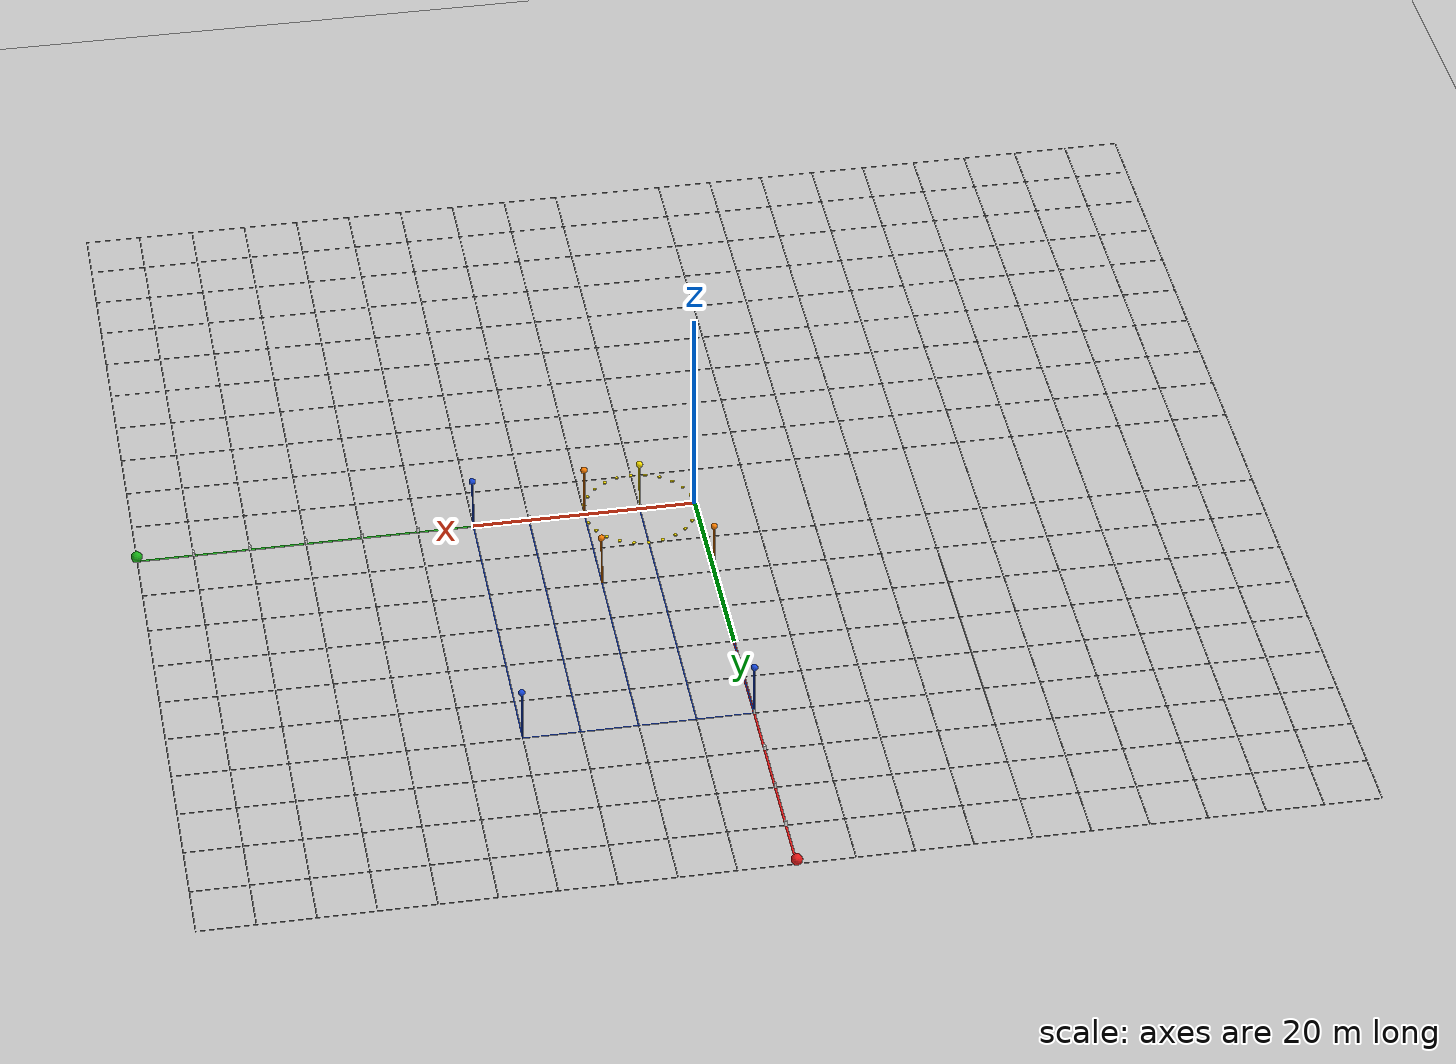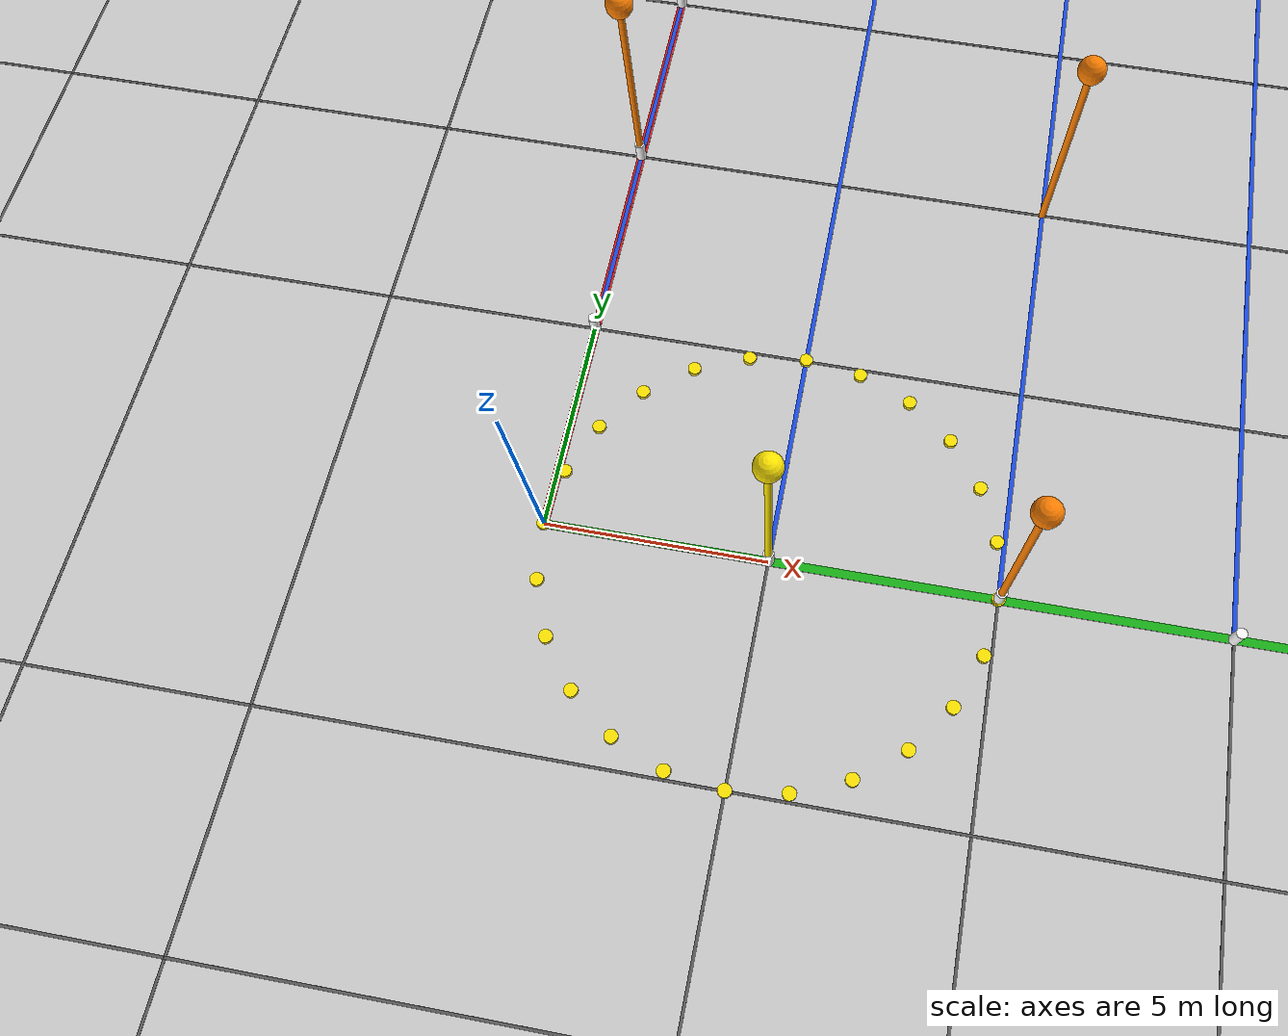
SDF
<?xml version="1.0" encoding="UTF-8"?>
<sdf version="1.9">
  <world name="trajectory_course">
    <physics type="ode">
      <max_step_size>0.004</max_step_size>
      <real_time_factor>1.0</real_time_factor>
      <real_time_update_rate>250</real_time_update_rate>
    </physics>
    <gravity>0 0 -9.8</gravity>
    <magnetic_field>6e-06 2.3e-05 -4.2e-05</magnetic_field>
    <atmosphere type="adiabatic"/>
    <scene>
      <grid>false</grid>
      <ambient>0.5 0.5 0.5 1</ambient>
      <background>0.53 0.75 0.93 1</background>
      <shadows>true</shadows>
    </scene>
    <model name="ground_plane">
      <static>true</static>
      <link name="link">
        <collision name="collision">
          <geometry><plane><normal>0 0 1</normal><size>1 1</size></plane></geometry>
        </collision>
        <visual name="visual">
          <geometry><plane><normal>0 0 1</normal><size>500 500</size></plane></geometry>
          <material>
            <ambient>0.8 0.8 0.8 1</ambient><diffuse>0.8 0.8 0.8 1</diffuse>
            <specular>0.1 0.1 0.1 1</specular>
          </material>
        </visual>
      </link>
    </model>
    <light name="sunUTC" type="directional">
      <pose>0 0 500 0 -0 0</pose>
      <cast_shadows>true</cast_shadows>
      <intensity>1</intensity>
      <direction>0.001 0.625 -0.78</direction>
      <diffuse>0.904 0.904 0.904 1</diffuse>
      <specular>0.271 0.271 0.271 1</specular>
    </light>
    <spherical_coordinates>
      <surface_model>EARTH_WGS84</surface_model>
      <world_frame_orientation>ENU</world_frame_orientation>
      <latitude_deg>47.397971057728974</latitude_deg>
      <longitude_deg>8.546163739800146</longitude_deg>
      <elevation>488</elevation>
    </spherical_coordinates>
    <model name="grid_e_1"><static>true</static><pose>-50.000 0.000 0.005 0 0 0</pose>
      <link name="l"><visual name="v"><geometry><box><size>0.06 100 0.01</size></box></geometry>
        <material><ambient>0.35 0.35 0.35 1</ambient><diffuse>0.35 0.35 0.35 1</diffuse><emissive>0.35 0.35 0.35 1</emissive></material>
      </visual></link></model>
    <model name="grid_n_2"><static>true</static><pose>0.000 -50.000 0.005 0 0 0</pose>
      <link name="l"><visual name="v"><geometry><box><size>100 0.06 0.01</size></box></geometry>
        <material><ambient>0.35 0.35 0.35 1</ambient><diffuse>0.35 0.35 0.35 1</diffuse><emissive>0.35 0.35 0.35 1</emissive></material>
      </visual></link></model>
    <model name="grid_e_3"><static>true</static><pose>-45.000 0.000 0.005 0 0 0</pose>
      <link name="l"><visual name="v"><geometry><box><size>0.06 100 0.01</size></box></geometry>
        <material><ambient>0.35 0.35 0.35 1</ambient><diffuse>0.35 0.35 0.35 1</diffuse><emissive>0.35 0.35 0.35 1</emissive></material>
      </visual></link></model>
    <model name="grid_n_4"><static>true</static><pose>0.000 -45.000 0.005 0 0 0</pose>
      <link name="l"><visual name="v"><geometry><box><size>100 0.06 0.01</size></box></geometry>
        <material><ambient>0.35 0.35 0.35 1</ambient><diffuse>0.35 0.35 0.35 1</diffuse><emissive>0.35 0.35 0.35 1</emissive></material>
      </visual></link></model>
    <model name="grid_e_5"><static>true</static><pose>-40.000 0.000 0.005 0 0 0</pose>
      <link name="l"><visual name="v"><geometry><box><size>0.06 100 0.01</size></box></geometry>
        <material><ambient>0.35 0.35 0.35 1</ambient><diffuse>0.35 0.35 0.35 1</diffuse><emissive>0.35 0.35 0.35 1</emissive></material>
      </visual></link></model>
    <model name="grid_n_6"><static>true</static><pose>0.000 -40.000 0.005 0 0 0</pose>
      <link name="l"><visual name="v"><geometry><box><size>100 0.06 0.01</size></box></geometry>
        <material><ambient>0.35 0.35 0.35 1</ambient><diffuse>0.35 0.35 0.35 1</diffuse><emissive>0.35 0.35 0.35 1</emissive></material>
      </visual></link></model>
    <model name="grid_e_7"><static>true</static><pose>-35.000 0.000 0.005 0 0 0</pose>
      <link name="l"><visual name="v"><geometry><box><size>0.06 100 0.01</size></box></geometry>
        <material><ambient>0.35 0.35 0.35 1</ambient><diffuse>0.35 0.35 0.35 1</diffuse><emissive>0.35 0.35 0.35 1</emissive></material>
      </visual></link></model>
    <model name="grid_n_8"><static>true</static><pose>0.000 -35.000 0.005 0 0 0</pose>
      <link name="l"><visual name="v"><geometry><box><size>100 0.06 0.01</size></box></geometry>
        <material><ambient>0.35 0.35 0.35 1</ambient><diffuse>0.35 0.35 0.35 1</diffuse><emissive>0.35 0.35 0.35 1</emissive></material>
      </visual></link></model>
    <model name="grid_e_9"><static>true</static><pose>-30.000 0.000 0.005 0 0 0</pose>
      <link name="l"><visual name="v"><geometry><box><size>0.06 100 0.01</size></box></geometry>
        <material><ambient>0.35 0.35 0.35 1</ambient><diffuse>0.35 0.35 0.35 1</diffuse><emissive>0.35 0.35 0.35 1</emissive></material>
      </visual></link></model>
    <model name="grid_n_10"><static>true</static><pose>0.000 -30.000 0.005 0 0 0</pose>
      <link name="l"><visual name="v"><geometry><box><size>100 0.06 0.01</size></box></geometry>
        <material><ambient>0.35 0.35 0.35 1</ambient><diffuse>0.35 0.35 0.35 1</diffuse><emissive>0.35 0.35 0.35 1</emissive></material>
      </visual></link></model>
    <model name="grid_e_11"><static>true</static><pose>-25.000 0.000 0.005 0 0 0</pose>
      <link name="l"><visual name="v"><geometry><box><size>0.06 100 0.01</size></box></geometry>
        <material><ambient>0.35 0.35 0.35 1</ambient><diffuse>0.35 0.35 0.35 1</diffuse><emissive>0.35 0.35 0.35 1</emissive></material>
      </visual></link></model>
    <model name="grid_n_12"><static>true</static><pose>0.000 -25.000 0.005 0 0 0</pose>
      <link name="l"><visual name="v"><geometry><box><size>100 0.06 0.01</size></box></geometry>
        <material><ambient>0.35 0.35 0.35 1</ambient><diffuse>0.35 0.35 0.35 1</diffuse><emissive>0.35 0.35 0.35 1</emissive></material>
      </visual></link></model>
    <model name="grid_e_13"><static>true</static><pose>-20.000 0.000 0.005 0 0 0</pose>
      <link name="l"><visual name="v"><geometry><box><size>0.06 100 0.01</size></box></geometry>
        <material><ambient>0.35 0.35 0.35 1</ambient><diffuse>0.35 0.35 0.35 1</diffuse><emissive>0.35 0.35 0.35 1</emissive></material>
      </visual></link></model>
    <model name="grid_n_14"><static>true</static><pose>0.000 -20.000 0.005 0 0 0</pose>
      <link name="l"><visual name="v"><geometry><box><size>100 0.06 0.01</size></box></geometry>
        <material><ambient>0.35 0.35 0.35 1</ambient><diffuse>0.35 0.35 0.35 1</diffuse><emissive>0.35 0.35 0.35 1</emissive></material>
      </visual></link></model>
    <model name="grid_e_15"><static>true</static><pose>-15.000 0.000 0.005 0 0 0</pose>
      <link name="l"><visual name="v"><geometry><box><size>0.06 100 0.01</size></box></geometry>
        <material><ambient>0.35 0.35 0.35 1</ambient><diffuse>0.35 0.35 0.35 1</diffuse><emissive>0.35 0.35 0.35 1</emissive></material>
      </visual></link></model>
    <model name="grid_n_16"><static>true</static><pose>0.000 -15.000 0.005 0 0 0</pose>
      <link name="l"><visual name="v"><geometry><box><size>100 0.06 0.01</size></box></geometry>
        <material><ambient>0.35 0.35 0.35 1</ambient><diffuse>0.35 0.35 0.35 1</diffuse><emissive>0.35 0.35 0.35 1</emissive></material>
      </visual></link></model>
    <model name="grid_e_17"><static>true</static><pose>-10.000 0.000 0.005 0 0 0</pose>
      <link name="l"><visual name="v"><geometry><box><size>0.06 100 0.01</size></box></geometry>
        <material><ambient>0.35 0.35 0.35 1</ambient><diffuse>0.35 0.35 0.35 1</diffuse><emissive>0.35 0.35 0.35 1</emissive></material>
      </visual></link></model>
    <model name="grid_n_18"><static>true</static><pose>0.000 -10.000 0.005 0 0 0</pose>
      <link name="l"><visual name="v"><geometry><box><size>100 0.06 0.01</size></box></geometry>
        <material><ambient>0.35 0.35 0.35 1</ambient><diffuse>0.35 0.35 0.35 1</diffuse><emissive>0.35 0.35 0.35 1</emissive></material>
      </visual></link></model>
    <model name="grid_e_19"><static>true</static><pose>-5.000 0.000 0.005 0 0 0</pose>
      <link name="l"><visual name="v"><geometry><box><size>0.06 100 0.01</size></box></geometry>
        <material><ambient>0.35 0.35 0.35 1</ambient><diffuse>0.35 0.35 0.35 1</diffuse><emissive>0.35 0.35 0.35 1</emissive></material>
      </visual></link></model>
    <model name="grid_n_20"><static>true</static><pose>0.000 -5.000 0.005 0 0 0</pose>
      <link name="l"><visual name="v"><geometry><box><size>100 0.06 0.01</size></box></geometry>
        <material><ambient>0.35 0.35 0.35 1</ambient><diffuse>0.35 0.35 0.35 1</diffuse><emissive>0.35 0.35 0.35 1</emissive></material>
      </visual></link></model>
    <model name="grid_e_21"><static>true</static><pose>5.000 0.000 0.005 0 0 0</pose>
      <link name="l"><visual name="v"><geometry><box><size>0.06 100 0.01</size></box></geometry>
        <material><ambient>0.35 0.35 0.35 1</ambient><diffuse>0.35 0.35 0.35 1</diffuse><emissive>0.35 0.35 0.35 1</emissive></material>
      </visual></link></model>
    <model name="grid_n_22"><static>true</static><pose>0.000 5.000 0.005 0 0 0</pose>
      <link name="l"><visual name="v"><geometry><box><size>100 0.06 0.01</size></box></geometry>
        <material><ambient>0.35 0.35 0.35 1</ambient><diffuse>0.35 0.35 0.35 1</diffuse><emissive>0.35 0.35 0.35 1</emissive></material>
      </visual></link></model>
    <model name="grid_e_23"><static>true</static><pose>10.000 0.000 0.005 0 0 0</pose>
      <link name="l"><visual name="v"><geometry><box><size>0.06 100 0.01</size></box></geometry>
        <material><ambient>0.35 0.35 0.35 1</ambient><diffuse>0.35 0.35 0.35 1</diffuse><emissive>0.35 0.35 0.35 1</emissive></material>
      </visual></link></model>
    <model name="grid_n_24"><static>true</static><pose>0.000 10.000 0.005 0 0 0</pose>
      <link name="l"><visual name="v"><geometry><box><size>100 0.06 0.01</size></box></geometry>
        <material><ambient>0.35 0.35 0.35 1</ambient><diffuse>0.35 0.35 0.35 1</diffuse><emissive>0.35 0.35 0.35 1</emissive></material>
      </visual></link></model>
    <model name="grid_e_25"><static>true</static><pose>15.000 0.000 0.005 0 0 0</pose>
      <link name="l"><visual name="v"><geometry><box><size>0.06 100 0.01</size></box></geometry>
        <material><ambient>0.35 0.35 0.35 1</ambient><diffuse>0.35 0.35 0.35 1</diffuse><emissive>0.35 0.35 0.35 1</emissive></material>
      </visual></link></model>
    <model name="grid_n_26"><static>true</static><pose>0.000 15.000 0.005 0 0 0</pose>
      <link name="l"><visual name="v"><geometry><box><size>100 0.06 0.01</size></box></geometry>
        <material><ambient>0.35 0.35 0.35 1</ambient><diffuse>0.35 0.35 0.35 1</diffuse><emissive>0.35 0.35 0.35 1</emissive></material>
      </visual></link></model>
    <model name="grid_e_27"><static>true</static><pose>20.000 0.000 0.005 0 0 0</pose>
      <link name="l"><visual name="v"><geometry><box><size>0.06 100 0.01</size></box></geometry>
        <material><ambient>0.35 0.35 0.35 1</ambient><diffuse>0.35 0.35 0.35 1</diffuse><emissive>0.35 0.35 0.35 1</emissive></material>
      </visual></link></model>
    <model name="grid_n_28"><static>true</static><pose>0.000 20.000 0.005 0 0 0</pose>
      <link name="l"><visual name="v"><geometry><box><size>100 0.06 0.01</size></box></geometry>
        <material><ambient>0.35 0.35 0.35 1</ambient><diffuse>0.35 0.35 0.35 1</diffuse><emissive>0.35 0.35 0.35 1</emissive></material>
      </visual></link></model>
    <model name="grid_e_29"><static>true</static><pose>25.000 0.000 0.005 0 0 0</pose>
      <link name="l"><visual name="v"><geometry><box><size>0.06 100 0.01</size></box></geometry>
        <material><ambient>0.35 0.35 0.35 1</ambient><diffuse>0.35 0.35 0.35 1</diffuse><emissive>0.35 0.35 0.35 1</emissive></material>
      </visual></link></model>
    <model name="grid_n_30"><static>true</static><pose>0.000 25.000 0.005 0 0 0</pose>
      <link name="l"><visual name="v"><geometry><box><size>100 0.06 0.01</size></box></geometry>
        <material><ambient>0.35 0.35 0.35 1</ambient><diffuse>0.35 0.35 0.35 1</diffuse><emissive>0.35 0.35 0.35 1</emissive></material>
      </visual></link></model>
    <model name="grid_e_31"><static>true</static><pose>30.000 0.000 0.005 0 0 0</pose>
      <link name="l"><visual name="v"><geometry><box><size>0.06 100 0.01</size></box></geometry>
        <material><ambient>0.35 0.35 0.35 1</ambient><diffuse>0.35 0.35 0.35 1</diffuse><emissive>0.35 0.35 0.35 1</emissive></material>
      </visual></link></model>
    <model name="grid_n_32"><static>true</static><pose>0.000 30.000 0.005 0 0 0</pose>
      <link name="l"><visual name="v"><geometry><box><size>100 0.06 0.01</size></box></geometry>
        <material><ambient>0.35 0.35 0.35 1</ambient><diffuse>0.35 0.35 0.35 1</diffuse><emissive>0.35 0.35 0.35 1</emissive></material>
      </visual></link></model>
    <model name="grid_e_33"><static>true</static><pose>35.000 0.000 0.005 0 0 0</pose>
      <link name="l"><visual name="v"><geometry><box><size>0.06 100 0.01</size></box></geometry>
        <material><ambient>0.35 0.35 0.35 1</ambient><diffuse>0.35 0.35 0.35 1</diffuse><emissive>0.35 0.35 0.35 1</emissive></material>
      </visual></link></model>
    <model name="grid_n_34"><static>true</static><pose>0.000 35.000 0.005 0 0 0</pose>
      <link name="l"><visual name="v"><geometry><box><size>100 0.06 0.01</size></box></geometry>
        <material><ambient>0.35 0.35 0.35 1</ambient><diffuse>0.35 0.35 0.35 1</diffuse><emissive>0.35 0.35 0.35 1</emissive></material>
      </visual></link></model>
    <model name="grid_e_35"><static>true</static><pose>40.000 0.000 0.005 0 0 0</pose>
      <link name="l"><visual name="v"><geometry><box><size>0.06 100 0.01</size></box></geometry>
        <material><ambient>0.35 0.35 0.35 1</ambient><diffuse>0.35 0.35 0.35 1</diffuse><emissive>0.35 0.35 0.35 1</emissive></material>
      </visual></link></model>
    <model name="grid_n_36"><static>true</static><pose>0.000 40.000 0.005 0 0 0</pose>
      <link name="l"><visual name="v"><geometry><box><size>100 0.06 0.01</size></box></geometry>
        <material><ambient>0.35 0.35 0.35 1</ambient><diffuse>0.35 0.35 0.35 1</diffuse><emissive>0.35 0.35 0.35 1</emissive></material>
      </visual></link></model>
    <model name="grid_e_37"><static>true</static><pose>45.000 0.000 0.005 0 0 0</pose>
      <link name="l"><visual name="v"><geometry><box><size>0.06 100 0.01</size></box></geometry>
        <material><ambient>0.35 0.35 0.35 1</ambient><diffuse>0.35 0.35 0.35 1</diffuse><emissive>0.35 0.35 0.35 1</emissive></material>
      </visual></link></model>
    <model name="grid_n_38"><static>true</static><pose>0.000 45.000 0.005 0 0 0</pose>
      <link name="l"><visual name="v"><geometry><box><size>100 0.06 0.01</size></box></geometry>
        <material><ambient>0.35 0.35 0.35 1</ambient><diffuse>0.35 0.35 0.35 1</diffuse><emissive>0.35 0.35 0.35 1</emissive></material>
      </visual></link></model>
    <model name="grid_e_39"><static>true</static><pose>50.000 0.000 0.005 0 0 0</pose>
      <link name="l"><visual name="v"><geometry><box><size>0.06 100 0.01</size></box></geometry>
        <material><ambient>0.35 0.35 0.35 1</ambient><diffuse>0.35 0.35 0.35 1</diffuse><emissive>0.35 0.35 0.35 1</emissive></material>
      </visual></link></model>
    <model name="grid_n_40"><static>true</static><pose>0.000 50.000 0.005 0 0 0</pose>
      <link name="l"><visual name="v"><geometry><box><size>100 0.06 0.01</size></box></geometry>
        <material><ambient>0.35 0.35 0.35 1</ambient><diffuse>0.35 0.35 0.35 1</diffuse><emissive>0.35 0.35 0.35 1</emissive></material>
      </visual></link></model>
    <model name="axis_north_41"><static>true</static><pose>0.000 25.000 0.010 0 0 0</pose>
      <link name="l"><visual name="v"><geometry><box><size>0.2 50 0.01</size></box></geometry>
        <material><ambient>0.9 0.1 0.1 1</ambient><diffuse>0.9 0.1 0.1 1</diffuse><emissive>0.9 0.1 0.1 1</emissive></material>
      </visual></link></model>
    <model name="axis_east_42"><static>true</static><pose>25.000 0.000 0.010 0 0 0</pose>
      <link name="l"><visual name="v"><geometry><box><size>50 0.2 0.01</size></box></geometry>
        <material><ambient>0.1 0.7 0.1 1</ambient><diffuse>0.1 0.7 0.1 1</diffuse><emissive>0.1 0.7 0.1 1</emissive></material>
      </visual></link></model>
    <model name="north_tip_43"><static>true</static><pose>0.000 50.000 0.500 0 0 0</pose>
      <link name="l"><visual name="v"><geometry><sphere><radius>0.5</radius></sphere></geometry>
        <material><ambient>0.9 0.1 0.1 1</ambient><diffuse>0.9 0.1 0.1 1</diffuse><emissive>0.9 0.1 0.1 1</emissive></material>
      </visual></link></model>
    <model name="east_tip_44"><static>true</static><pose>50.000 0.000 0.500 0 0 0</pose>
      <link name="l"><visual name="v"><geometry><sphere><radius>0.5</radius></sphere></geometry>
        <material><ambient>0.1 0.7 0.1 1</ambient><diffuse>0.1 0.7 0.1 1</diffuse><emissive>0.1 0.7 0.1 1</emissive></material>
      </visual></link></model>
    <model name="tick_n_45"><static>true</static><pose>0.000 5.000 0.250 0 0 0</pose>
      <link name="l"><visual name="v"><geometry><cylinder><radius>0.12</radius><length>0.5</length></cylinder></geometry>
        <material><ambient>1 1 1 1</ambient><diffuse>1 1 1 1</diffuse><emissive>1 1 1 1</emissive></material>
      </visual></link></model>
    <model name="tick_e_46"><static>true</static><pose>5.000 0.000 0.250 0 0 0</pose>
      <link name="l"><visual name="v"><geometry><cylinder><radius>0.12</radius><length>0.5</length></cylinder></geometry>
        <material><ambient>1 1 1 1</ambient><diffuse>1 1 1 1</diffuse><emissive>1 1 1 1</emissive></material>
      </visual></link></model>
    <model name="tick_n_47"><static>true</static><pose>0.000 10.000 0.250 0 0 0</pose>
      <link name="l"><visual name="v"><geometry><cylinder><radius>0.12</radius><length>0.5</length></cylinder></geometry>
        <material><ambient>1 1 1 1</ambient><diffuse>1 1 1 1</diffuse><emissive>1 1 1 1</emissive></material>
      </visual></link></model>
    <model name="tick_e_48"><static>true</static><pose>10.000 0.000 0.250 0 0 0</pose>
      <link name="l"><visual name="v"><geometry><cylinder><radius>0.12</radius><length>0.5</length></cylinder></geometry>
        <material><ambient>1 1 1 1</ambient><diffuse>1 1 1 1</diffuse><emissive>1 1 1 1</emissive></material>
      </visual></link></model>
    <model name="tick_n_49"><static>true</static><pose>0.000 15.000 0.250 0 0 0</pose>
      <link name="l"><visual name="v"><geometry><cylinder><radius>0.12</radius><length>0.5</length></cylinder></geometry>
        <material><ambient>1 1 1 1</ambient><diffuse>1 1 1 1</diffuse><emissive>1 1 1 1</emissive></material>
      </visual></link></model>
    <model name="tick_e_50"><static>true</static><pose>15.000 0.000 0.250 0 0 0</pose>
      <link name="l"><visual name="v"><geometry><cylinder><radius>0.12</radius><length>0.5</length></cylinder></geometry>
        <material><ambient>1 1 1 1</ambient><diffuse>1 1 1 1</diffuse><emissive>1 1 1 1</emissive></material>
      </visual></link></model>
    <model name="tick_n_51"><static>true</static><pose>0.000 20.000 0.250 0 0 0</pose>
      <link name="l"><visual name="v"><geometry><cylinder><radius>0.12</radius><length>0.5</length></cylinder></geometry>
        <material><ambient>1 1 1 1</ambient><diffuse>1 1 1 1</diffuse><emissive>1 1 1 1</emissive></material>
      </visual></link></model>
    <model name="tick_e_52"><static>true</static><pose>20.000 0.000 0.250 0 0 0</pose>
      <link name="l"><visual name="v"><geometry><cylinder><radius>0.12</radius><length>0.5</length></cylinder></geometry>
        <material><ambient>1 1 1 1</ambient><diffuse>1 1 1 1</diffuse><emissive>1 1 1 1</emissive></material>
      </visual></link></model>
    <model name="tick_n_53"><static>true</static><pose>0.000 25.000 0.250 0 0 0</pose>
      <link name="l"><visual name="v"><geometry><cylinder><radius>0.12</radius><length>0.5</length></cylinder></geometry>
        <material><ambient>1 1 1 1</ambient><diffuse>1 1 1 1</diffuse><emissive>1 1 1 1</emissive></material>
      </visual></link></model>
    <model name="tick_e_54"><static>true</static><pose>25.000 0.000 0.250 0 0 0</pose>
      <link name="l"><visual name="v"><geometry><cylinder><radius>0.12</radius><length>0.5</length></cylinder></geometry>
        <material><ambient>1 1 1 1</ambient><diffuse>1 1 1 1</diffuse><emissive>1 1 1 1</emissive></material>
      </visual></link></model>
    <model name="tick_n_55"><static>true</static><pose>0.000 30.000 0.250 0 0 0</pose>
      <link name="l"><visual name="v"><geometry><cylinder><radius>0.12</radius><length>0.5</length></cylinder></geometry>
        <material><ambient>1 1 1 1</ambient><diffuse>1 1 1 1</diffuse><emissive>1 1 1 1</emissive></material>
      </visual></link></model>
    <model name="tick_e_56"><static>true</static><pose>30.000 0.000 0.250 0 0 0</pose>
      <link name="l"><visual name="v"><geometry><cylinder><radius>0.12</radius><length>0.5</length></cylinder></geometry>
        <material><ambient>1 1 1 1</ambient><diffuse>1 1 1 1</diffuse><emissive>1 1 1 1</emissive></material>
      </visual></link></model>
    <model name="tick_n_57"><static>true</static><pose>0.000 35.000 0.250 0 0 0</pose>
      <link name="l"><visual name="v"><geometry><cylinder><radius>0.12</radius><length>0.5</length></cylinder></geometry>
        <material><ambient>1 1 1 1</ambient><diffuse>1 1 1 1</diffuse><emissive>1 1 1 1</emissive></material>
      </visual></link></model>
    <model name="tick_e_58"><static>true</static><pose>35.000 0.000 0.250 0 0 0</pose>
      <link name="l"><visual name="v"><geometry><cylinder><radius>0.12</radius><length>0.5</length></cylinder></geometry>
        <material><ambient>1 1 1 1</ambient><diffuse>1 1 1 1</diffuse><emissive>1 1 1 1</emissive></material>
      </visual></link></model>
    <model name="tick_n_59"><static>true</static><pose>0.000 40.000 0.250 0 0 0</pose>
      <link name="l"><visual name="v"><geometry><cylinder><radius>0.12</radius><length>0.5</length></cylinder></geometry>
        <material><ambient>1 1 1 1</ambient><diffuse>1 1 1 1</diffuse><emissive>1 1 1 1</emissive></material>
      </visual></link></model>
    <model name="tick_e_60"><static>true</static><pose>40.000 0.000 0.250 0 0 0</pose>
      <link name="l"><visual name="v"><geometry><cylinder><radius>0.12</radius><length>0.5</length></cylinder></geometry>
        <material><ambient>1 1 1 1</ambient><diffuse>1 1 1 1</diffuse><emissive>1 1 1 1</emissive></material>
      </visual></link></model>
    <model name="tick_n_61"><static>true</static><pose>0.000 45.000 0.250 0 0 0</pose>
      <link name="l"><visual name="v"><geometry><cylinder><radius>0.12</radius><length>0.5</length></cylinder></geometry>
        <material><ambient>1 1 1 1</ambient><diffuse>1 1 1 1</diffuse><emissive>1 1 1 1</emissive></material>
      </visual></link></model>
    <model name="tick_e_62"><static>true</static><pose>45.000 0.000 0.250 0 0 0</pose>
      <link name="l"><visual name="v"><geometry><cylinder><radius>0.12</radius><length>0.5</length></cylinder></geometry>
        <material><ambient>1 1 1 1</ambient><diffuse>1 1 1 1</diffuse><emissive>1 1 1 1</emissive></material>
      </visual></link></model>
    <model name="tick_n_63"><static>true</static><pose>0.000 50.000 0.250 0 0 0</pose>
      <link name="l"><visual name="v"><geometry><cylinder><radius>0.12</radius><length>0.5</length></cylinder></geometry>
        <material><ambient>1 1 1 1</ambient><diffuse>1 1 1 1</diffuse><emissive>1 1 1 1</emissive></material>
      </visual></link></model>
    <model name="tick_e_64"><static>true</static><pose>50.000 0.000 0.250 0 0 0</pose>
      <link name="l"><visual name="v"><geometry><cylinder><radius>0.12</radius><length>0.5</length></cylinder></geometry>
        <material><ambient>1 1 1 1</ambient><diffuse>1 1 1 1</diffuse><emissive>1 1 1 1</emissive></material>
      </visual></link></model>
    <model name="pole_65"><static>true</static><pose>0.000 10.000 2.500 0 0 0</pose>
      <link name="l"><visual name="v"><geometry><cylinder><radius>0.08</radius><length>5.0</length></cylinder></geometry>
        <material><ambient>1 0.5 0 1</ambient><diffuse>1 0.5 0 1</diffuse><emissive>1 0.5 0 1</emissive></material>
      </visual></link></model>
    <model name="pole_top_66"><static>true</static><pose>0.000 10.000 5.000 0 0 0</pose>
      <link name="l"><visual name="v"><geometry><sphere><radius>0.3</radius></sphere></geometry>
        <material><ambient>1 0.5 0 1</ambient><diffuse>1 0.5 0 1</diffuse><emissive>1 0.5 0 1</emissive></material>
      </visual></link></model>
    <model name="pole_67"><static>true</static><pose>10.000 10.000 2.500 0 0 0</pose>
      <link name="l"><visual name="v"><geometry><cylinder><radius>0.08</radius><length>5.0</length></cylinder></geometry>
        <material><ambient>1 0.5 0 1</ambient><diffuse>1 0.5 0 1</diffuse><emissive>1 0.5 0 1</emissive></material>
      </visual></link></model>
    <model name="pole_top_68"><static>true</static><pose>10.000 10.000 5.000 0 0 0</pose>
      <link name="l"><visual name="v"><geometry><sphere><radius>0.3</radius></sphere></geometry>
        <material><ambient>1 0.5 0 1</ambient><diffuse>1 0.5 0 1</diffuse><emissive>1 0.5 0 1</emissive></material>
      </visual></link></model>
    <model name="pole_69"><static>true</static><pose>10.000 0.000 2.500 0 0 0</pose>
      <link name="l"><visual name="v"><geometry><cylinder><radius>0.08</radius><length>5.0</length></cylinder></geometry>
        <material><ambient>1 0.5 0 1</ambient><diffuse>1 0.5 0 1</diffuse><emissive>1 0.5 0 1</emissive></material>
      </visual></link></model>
    <model name="pole_top_70"><static>true</static><pose>10.000 0.000 5.000 0 0 0</pose>
      <link name="l"><visual name="v"><geometry><sphere><radius>0.3</radius></sphere></geometry>
        <material><ambient>1 0.5 0 1</ambient><diffuse>1 0.5 0 1</diffuse><emissive>1 0.5 0 1</emissive></material>
      </visual></link></model>
    <model name="circle_71"><static>true</static><pose>10.000 0.000 0.050 0 0 0</pose>
      <link name="l"><visual name="v"><geometry><cylinder><radius>0.15</radius><length>0.1</length></cylinder></geometry>
        <material><ambient>1 0.9 0 1</ambient><diffuse>1 0.9 0 1</diffuse><emissive>1 0.9 0 1</emissive></material>
      </visual></link></model>
    <model name="circle_72"><static>true</static><pose>9.830 1.294 0.050 0 0 0</pose>
      <link name="l"><visual name="v"><geometry><cylinder><radius>0.15</radius><length>0.1</length></cylinder></geometry>
        <material><ambient>1 0.9 0 1</ambient><diffuse>1 0.9 0 1</diffuse><emissive>1 0.9 0 1</emissive></material>
      </visual></link></model>
    <model name="circle_73"><static>true</static><pose>9.330 2.500 0.050 0 0 0</pose>
      <link name="l"><visual name="v"><geometry><cylinder><radius>0.15</radius><length>0.1</length></cylinder></geometry>
        <material><ambient>1 0.9 0 1</ambient><diffuse>1 0.9 0 1</diffuse><emissive>1 0.9 0 1</emissive></material>
      </visual></link></model>
    <model name="circle_74"><static>true</static><pose>8.536 3.536 0.050 0 0 0</pose>
      <link name="l"><visual name="v"><geometry><cylinder><radius>0.15</radius><length>0.1</length></cylinder></geometry>
        <material><ambient>1 0.9 0 1</ambient><diffuse>1 0.9 0 1</diffuse><emissive>1 0.9 0 1</emissive></material>
      </visual></link></model>
    <model name="circle_75"><static>true</static><pose>7.500 4.330 0.050 0 0 0</pose>
      <link name="l"><visual name="v"><geometry><cylinder><radius>0.15</radius><length>0.1</length></cylinder></geometry>
        <material><ambient>1 0.9 0 1</ambient><diffuse>1 0.9 0 1</diffuse><emissive>1 0.9 0 1</emissive></material>
      </visual></link></model>
    <model name="circle_76"><static>true</static><pose>6.294 4.830 0.050 0 0 0</pose>
      <link name="l"><visual name="v"><geometry><cylinder><radius>0.15</radius><length>0.1</length></cylinder></geometry>
        <material><ambient>1 0.9 0 1</ambient><diffuse>1 0.9 0 1</diffuse><emissive>1 0.9 0 1</emissive></material>
      </visual></link></model>
    <model name="circle_77"><static>true</static><pose>5.000 5.000 0.050 0 0 0</pose>
      <link name="l"><visual name="v"><geometry><cylinder><radius>0.15</radius><length>0.1</length></cylinder></geometry>
        <material><ambient>1 0.9 0 1</ambient><diffuse>1 0.9 0 1</diffuse><emissive>1 0.9 0 1</emissive></material>
      </visual></link></model>
    <model name="circle_78"><static>true</static><pose>3.706 4.830 0.050 0 0 0</pose>
      <link name="l"><visual name="v"><geometry><cylinder><radius>0.15</radius><length>0.1</length></cylinder></geometry>
        <material><ambient>1 0.9 0 1</ambient><diffuse>1 0.9 0 1</diffuse><emissive>1 0.9 0 1</emissive></material>
      </visual></link></model>
    <model name="circle_79"><static>true</static><pose>2.500 4.330 0.050 0 0 0</pose>
      <link name="l"><visual name="v"><geometry><cylinder><radius>0.15</radius><length>0.1</length></cylinder></geometry>
        <material><ambient>1 0.9 0 1</ambient><diffuse>1 0.9 0 1</diffuse><emissive>1 0.9 0 1</emissive></material>
      </visual></link></model>
    <model name="circle_80"><static>true</static><pose>1.464 3.536 0.050 0 0 0</pose>
      <link name="l"><visual name="v"><geometry><cylinder><radius>0.15</radius><length>0.1</length></cylinder></geometry>
        <material><ambient>1 0.9 0 1</ambient><diffuse>1 0.9 0 1</diffuse><emissive>1 0.9 0 1</emissive></material>
      </visual></link></model>
    <model name="circle_81"><static>true</static><pose>0.670 2.500 0.050 0 0 0</pose>
      <link name="l"><visual name="v"><geometry><cylinder><radius>0.15</radius><length>0.1</length></cylinder></geometry>
        <material><ambient>1 0.9 0 1</ambient><diffuse>1 0.9 0 1</diffuse><emissive>1 0.9 0 1</emissive></material>
      </visual></link></model>
    <model name="circle_82"><static>true</static><pose>0.170 1.294 0.050 0 0 0</pose>
      <link name="l"><visual name="v"><geometry><cylinder><radius>0.15</radius><length>0.1</length></cylinder></geometry>
        <material><ambient>1 0.9 0 1</ambient><diffuse>1 0.9 0 1</diffuse><emissive>1 0.9 0 1</emissive></material>
      </visual></link></model>
    <model name="circle_83"><static>true</static><pose>0.000 0.000 0.050 0 0 0</pose>
      <link name="l"><visual name="v"><geometry><cylinder><radius>0.15</radius><length>0.1</length></cylinder></geometry>
        <material><ambient>1 0.9 0 1</ambient><diffuse>1 0.9 0 1</diffuse><emissive>1 0.9 0 1</emissive></material>
      </visual></link></model>
    <model name="circle_84"><static>true</static><pose>0.170 -1.294 0.050 0 0 0</pose>
      <link name="l"><visual name="v"><geometry><cylinder><radius>0.15</radius><length>0.1</length></cylinder></geometry>
        <material><ambient>1 0.9 0 1</ambient><diffuse>1 0.9 0 1</diffuse><emissive>1 0.9 0 1</emissive></material>
      </visual></link></model>
    <model name="circle_85"><static>true</static><pose>0.670 -2.500 0.050 0 0 0</pose>
      <link name="l"><visual name="v"><geometry><cylinder><radius>0.15</radius><length>0.1</length></cylinder></geometry>
        <material><ambient>1 0.9 0 1</ambient><diffuse>1 0.9 0 1</diffuse><emissive>1 0.9 0 1</emissive></material>
      </visual></link></model>
    <model name="circle_86"><static>true</static><pose>1.464 -3.536 0.050 0 0 0</pose>
      <link name="l"><visual name="v"><geometry><cylinder><radius>0.15</radius><length>0.1</length></cylinder></geometry>
        <material><ambient>1 0.9 0 1</ambient><diffuse>1 0.9 0 1</diffuse><emissive>1 0.9 0 1</emissive></material>
      </visual></link></model>
    <model name="circle_87"><static>true</static><pose>2.500 -4.330 0.050 0 0 0</pose>
      <link name="l"><visual name="v"><geometry><cylinder><radius>0.15</radius><length>0.1</length></cylinder></geometry>
        <material><ambient>1 0.9 0 1</ambient><diffuse>1 0.9 0 1</diffuse><emissive>1 0.9 0 1</emissive></material>
      </visual></link></model>
    <model name="circle_88"><static>true</static><pose>3.706 -4.830 0.050 0 0 0</pose>
      <link name="l"><visual name="v"><geometry><cylinder><radius>0.15</radius><length>0.1</length></cylinder></geometry>
        <material><ambient>1 0.9 0 1</ambient><diffuse>1 0.9 0 1</diffuse><emissive>1 0.9 0 1</emissive></material>
      </visual></link></model>
    <model name="circle_89"><static>true</static><pose>5.000 -5.000 0.050 0 0 0</pose>
      <link name="l"><visual name="v"><geometry><cylinder><radius>0.15</radius><length>0.1</length></cylinder></geometry>
        <material><ambient>1 0.9 0 1</ambient><diffuse>1 0.9 0 1</diffuse><emissive>1 0.9 0 1</emissive></material>
      </visual></link></model>
    <model name="circle_90"><static>true</static><pose>6.294 -4.830 0.050 0 0 0</pose>
      <link name="l"><visual name="v"><geometry><cylinder><radius>0.15</radius><length>0.1</length></cylinder></geometry>
        <material><ambient>1 0.9 0 1</ambient><diffuse>1 0.9 0 1</diffuse><emissive>1 0.9 0 1</emissive></material>
      </visual></link></model>
    <model name="circle_91"><static>true</static><pose>7.500 -4.330 0.050 0 0 0</pose>
      <link name="l"><visual name="v"><geometry><cylinder><radius>0.15</radius><length>0.1</length></cylinder></geometry>
        <material><ambient>1 0.9 0 1</ambient><diffuse>1 0.9 0 1</diffuse><emissive>1 0.9 0 1</emissive></material>
      </visual></link></model>
    <model name="circle_92"><static>true</static><pose>8.536 -3.536 0.050 0 0 0</pose>
      <link name="l"><visual name="v"><geometry><cylinder><radius>0.15</radius><length>0.1</length></cylinder></geometry>
        <material><ambient>1 0.9 0 1</ambient><diffuse>1 0.9 0 1</diffuse><emissive>1 0.9 0 1</emissive></material>
      </visual></link></model>
    <model name="circle_93"><static>true</static><pose>9.330 -2.500 0.050 0 0 0</pose>
      <link name="l"><visual name="v"><geometry><cylinder><radius>0.15</radius><length>0.1</length></cylinder></geometry>
        <material><ambient>1 0.9 0 1</ambient><diffuse>1 0.9 0 1</diffuse><emissive>1 0.9 0 1</emissive></material>
      </visual></link></model>
    <model name="circle_94"><static>true</static><pose>9.830 -1.294 0.050 0 0 0</pose>
      <link name="l"><visual name="v"><geometry><cylinder><radius>0.15</radius><length>0.1</length></cylinder></geometry>
        <material><ambient>1 0.9 0 1</ambient><diffuse>1 0.9 0 1</diffuse><emissive>1 0.9 0 1</emissive></material>
      </visual></link></model>
    <model name="pole_95"><static>true</static><pose>5.000 0.000 2.500 0 0 0</pose>
      <link name="l"><visual name="v"><geometry><cylinder><radius>0.08</radius><length>5.0</length></cylinder></geometry>
        <material><ambient>1 0.9 0 1</ambient><diffuse>1 0.9 0 1</diffuse><emissive>1 0.9 0 1</emissive></material>
      </visual></link></model>
    <model name="pole_top_96"><static>true</static><pose>5.000 0.000 5.000 0 0 0</pose>
      <link name="l"><visual name="v"><geometry><sphere><radius>0.3</radius></sphere></geometry>
        <material><ambient>1 0.9 0 1</ambient><diffuse>1 0.9 0 1</diffuse><emissive>1 0.9 0 1</emissive></material>
      </visual></link></model>
    <model name="lane_97"><static>true</static><pose>0.000 15.000 0.015 0 0 0</pose>
      <link name="l"><visual name="v"><geometry><box><size>0.1 30 0.01</size></box></geometry>
        <material><ambient>0.1 0.3 0.9 1</ambient><diffuse>0.1 0.3 0.9 1</diffuse><emissive>0.1 0.3 0.9 1</emissive></material>
      </visual></link></model>
    <model name="lane_98"><static>true</static><pose>5.000 15.000 0.015 0 0 0</pose>
      <link name="l"><visual name="v"><geometry><box><size>0.1 30 0.01</size></box></geometry>
        <material><ambient>0.1 0.3 0.9 1</ambient><diffuse>0.1 0.3 0.9 1</diffuse><emissive>0.1 0.3 0.9 1</emissive></material>
      </visual></link></model>
    <model name="lane_99"><static>true</static><pose>10.000 15.000 0.015 0 0 0</pose>
      <link name="l"><visual name="v"><geometry><box><size>0.1 30 0.01</size></box></geometry>
        <material><ambient>0.1 0.3 0.9 1</ambient><diffuse>0.1 0.3 0.9 1</diffuse><emissive>0.1 0.3 0.9 1</emissive></material>
      </visual></link></model>
    <model name="lane_100"><static>true</static><pose>15.000 15.000 0.015 0 0 0</pose>
      <link name="l"><visual name="v"><geometry><box><size>0.1 30 0.01</size></box></geometry>
        <material><ambient>0.1 0.3 0.9 1</ambient><diffuse>0.1 0.3 0.9 1</diffuse><emissive>0.1 0.3 0.9 1</emissive></material>
      </visual></link></model>
    <model name="lane_101"><static>true</static><pose>20.000 15.000 0.015 0 0 0</pose>
      <link name="l"><visual name="v"><geometry><box><size>0.1 30 0.01</size></box></geometry>
        <material><ambient>0.1 0.3 0.9 1</ambient><diffuse>0.1 0.3 0.9 1</diffuse><emissive>0.1 0.3 0.9 1</emissive></material>
      </visual></link></model>
    <model name="survey_edge_n_102"><static>true</static><pose>10.000 30.000 0.015 0 0 0</pose>
      <link name="l"><visual name="v"><geometry><box><size>20 0.1 0.01</size></box></geometry>
        <material><ambient>0.1 0.3 0.9 1</ambient><diffuse>0.1 0.3 0.9 1</diffuse><emissive>0.1 0.3 0.9 1</emissive></material>
      </visual></link></model>
    <model name="pole_103"><static>true</static><pose>0.000 30.000 2.500 0 0 0</pose>
      <link name="l"><visual name="v"><geometry><cylinder><radius>0.08</radius><length>5.0</length></cylinder></geometry>
        <material><ambient>0.1 0.3 0.9 1</ambient><diffuse>0.1 0.3 0.9 1</diffuse><emissive>0.1 0.3 0.9 1</emissive></material>
      </visual></link></model>
    <model name="pole_top_104"><static>true</static><pose>0.000 30.000 5.000 0 0 0</pose>
      <link name="l"><visual name="v"><geometry><sphere><radius>0.3</radius></sphere></geometry>
        <material><ambient>0.1 0.3 0.9 1</ambient><diffuse>0.1 0.3 0.9 1</diffuse><emissive>0.1 0.3 0.9 1</emissive></material>
      </visual></link></model>
    <model name="pole_105"><static>true</static><pose>20.000 30.000 2.500 0 0 0</pose>
      <link name="l"><visual name="v"><geometry><cylinder><radius>0.08</radius><length>5.0</length></cylinder></geometry>
        <material><ambient>0.1 0.3 0.9 1</ambient><diffuse>0.1 0.3 0.9 1</diffuse><emissive>0.1 0.3 0.9 1</emissive></material>
      </visual></link></model>
    <model name="pole_top_106"><static>true</static><pose>20.000 30.000 5.000 0 0 0</pose>
      <link name="l"><visual name="v"><geometry><sphere><radius>0.3</radius></sphere></geometry>
        <material><ambient>0.1 0.3 0.9 1</ambient><diffuse>0.1 0.3 0.9 1</diffuse><emissive>0.1 0.3 0.9 1</emissive></material>
      </visual></link></model>
    <model name="pole_107"><static>true</static><pose>20.000 0.000 2.500 0 0 0</pose>
      <link name="l"><visual name="v"><geometry><cylinder><radius>0.08</radius><length>5.0</length></cylinder></geometry>
        <material><ambient>0.1 0.3 0.9 1</ambient><diffuse>0.1 0.3 0.9 1</diffuse><emissive>0.1 0.3 0.9 1</emissive></material>
      </visual></link></model>
    <model name="pole_top_108"><static>true</static><pose>20.000 0.000 5.000 0 0 0</pose>
      <link name="l"><visual name="v"><geometry><sphere><radius>0.3</radius></sphere></geometry>
        <material><ambient>0.1 0.3 0.9 1</ambient><diffuse>0.1 0.3 0.9 1</diffuse><emissive>0.1 0.3 0.9 1</emissive></material>
      </visual></link></model>
  </world>
</sdf>
